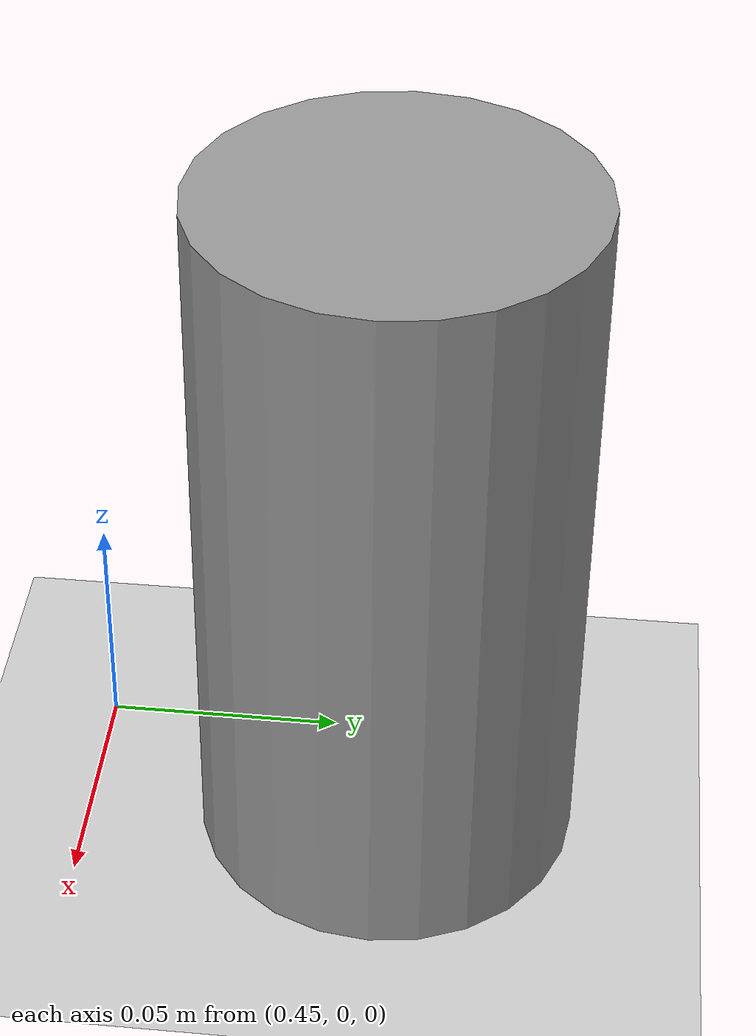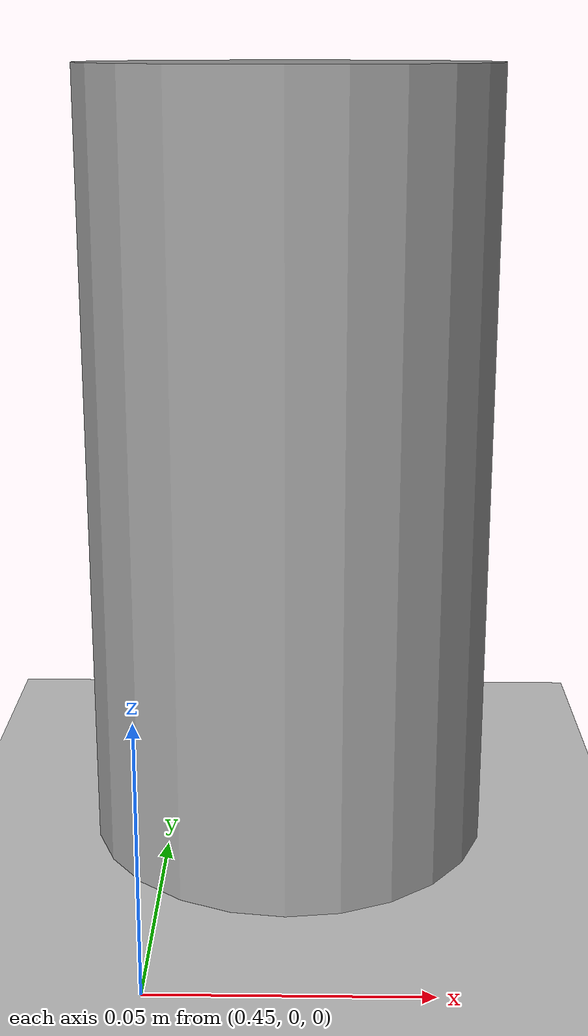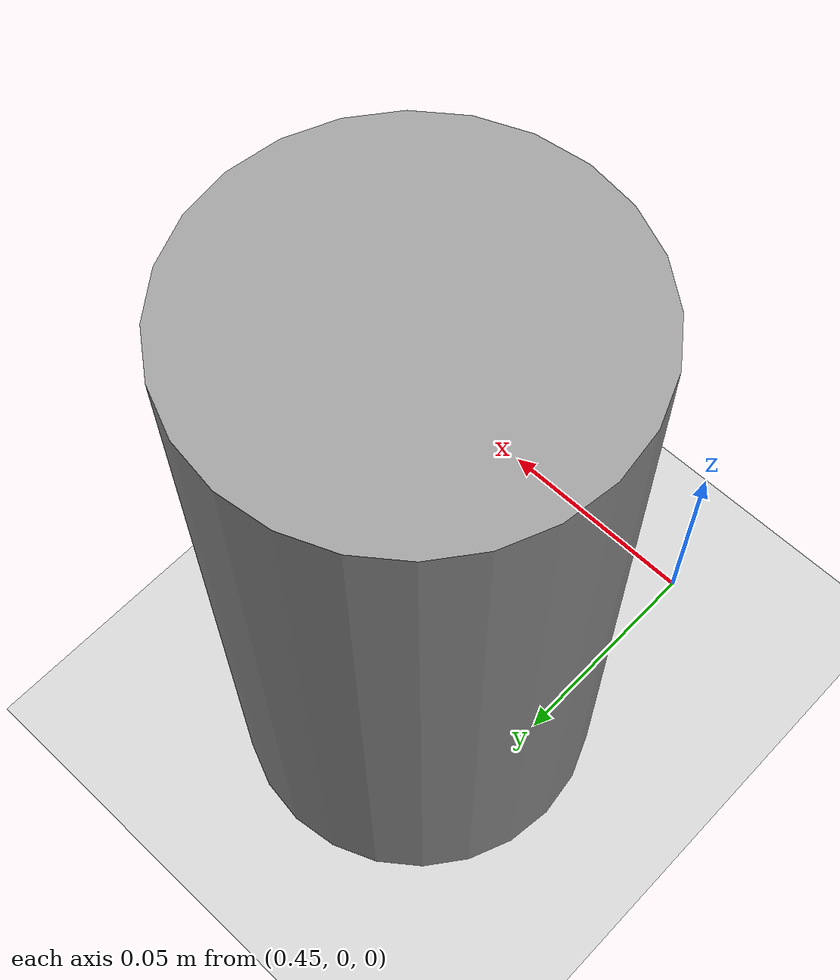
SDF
<sdf version="1.6">
 <world name="default">
  <light name="sun" type="directional">
   <pose>0 0 10 0 -0 0</pose>
   <diffuse>0.8 0.8 0.8 1</diffuse>
   <specular>0.2 0.2 0.2 1</specular>
   <attenuation>
    <range>1000</range>
    <constant>0.9</constant>
    <linear>0.01</linear>
    <quadratic>0.001</quadratic>
   </attenuation>
   <direction>-0.5 0.1 -0.9</direction>
  </light>
  <model name="ground_plane">
   <static>1</static>
   <link name="link">
    <collision name="collision">
     <geometry><plane><normal>0 0 1</normal><size>100 100</size></plane></geometry>
     <surface>
      <contact><collide_bitmask>65535</collide_bitmask></contact>
      <friction><ode><mu>100</mu><mu2>50</mu2></ode></friction>
     </surface>
    </collision>
    <visual name="visual">
     <cast_shadows>0</cast_shadows>
     <geometry><plane><normal>0 0 1</normal><size>100 100</size></plane></geometry>
     <material>
      <script><uri>file://media/materials/scripts/gazebo.material</uri><name>Gazebo/Grey</name></script>
     </material>
    </visual>
   </link>
  </model>
  <gravity>0 0 -9.8</gravity>
  <magnetic_field>6e-06 2.3e-05 -4.2e-05</magnetic_field>
  <atmosphere type="adiabatic"/>
  <physics name="default_physics" default="0" type="ode">
   <max_step_size>0.001</max_step_size>
   <real_time_factor>1</real_time_factor>
   <real_time_update_rate>1000</real_time_update_rate>
  </physics>
  <scene><ambient>0.4 0.4 0.4 1</ambient><background>0.7 0.7 0.7 1</background><shadows>1</shadows></scene>
  <audio><device>default</device></audio>
  <spherical_coordinates>
   <surface_model>EARTH_WGS84</surface_model>
   <latitude_deg>0</latitude_deg>
   <longitude_deg>0</longitude_deg>
   <elevation>0</elevation>
   <heading_deg>0</heading_deg>
  </spherical_coordinates>
  <model name="unit_cylinder">
   <pose>0.473933 0.06346 0.075621 1e-06 0 -0.000316</pose>
   <link name="link">
    <inertial>
     <mass>0.2</mass>
     <inertia><ixx>0.029167</ixx><ixy>0</ixy><ixz>0</ixz><iyy>0.029167</iyy><iyz>0</iyz><izz>0.025</izz></inertia>
    </inertial>
    <collision name="collision">
     <geometry><cylinder><radius>0.0395765</radius><length>0.151258</length></cylinder></geometry>
     <surface><friction><ode><mu>2000</mu><mu2>2000</mu2></ode></friction></surface>
    </collision>
    <visual name="visual">
     <geometry><cylinder><radius>0.0395765</radius><length>0.151258</length></cylinder></geometry>
     <material>
      <script><name>Gazebo/Grey</name><uri>file://media/materials/scripts/gazebo.material</uri></script>
     </material>
    </visual>
   </link>
  </model>
 </world>
</sdf>
